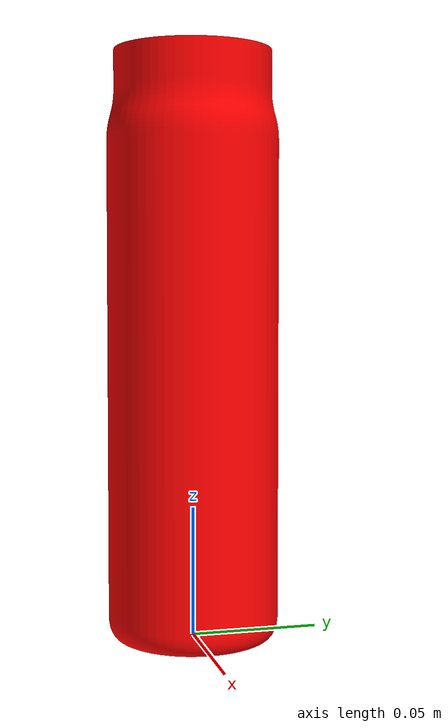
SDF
<?xml version='1.0'?>
<sdf version="1.4">
  <model name="tr_jar2">
    <pose>0 0 0 0 0 0</pose>
    <static>false</static>
    <link name="link">
      <inertial>
        <mass>0.001</mass>
        <inertia>
          <ixx>0.00351740193</ixx>
          <ixy>0.0</ixy>
          <ixz>0.0</ixz>
          <iyy>0.00351740193</iyy>
          <iyz>0.0</iyz>
          <izz>0.0001764</izz>
        </inertia>
      </inertial>
      <collision name="collision">
        <geometry>
          <mesh>
            <uri>model://tr_jar/tr_jar.stl</uri>
            <scale>0.022 0.022 0.0393701</scale>
          </mesh>
	      </geometry>
        <surface>
          <friction>
            <ode>
              <mu>1.0</mu>
              <mu2>1.0</mu2>
            </ode>
          </friction>
          <contact>
            <ode>
              <kp>10000000.0</kp>
              <kd>1.0</kd>
              <min_depth>0.001</min_depth>
              <max_vel>0.1</max_vel>
            </ode>
          </contact>
        </surface>
      </collision>
      <visual name="visual">
        <geometry>
          <mesh>
            <uri>model://tr_jar/tr_jar.stl</uri>
            <scale>0.022 0.022 0.0393701</scale>
          </mesh>
        </geometry>
        <material>
          <ambient>1 0 0 1</ambient>
          <diffuse>1 0 0 1</diffuse>
          <specular>0.1 0.1 0.1 1</specular>
          <emissive>0 0 0 0</emissive>
        </material>
      </visual>
    </link>
  </model>
</sdf>
